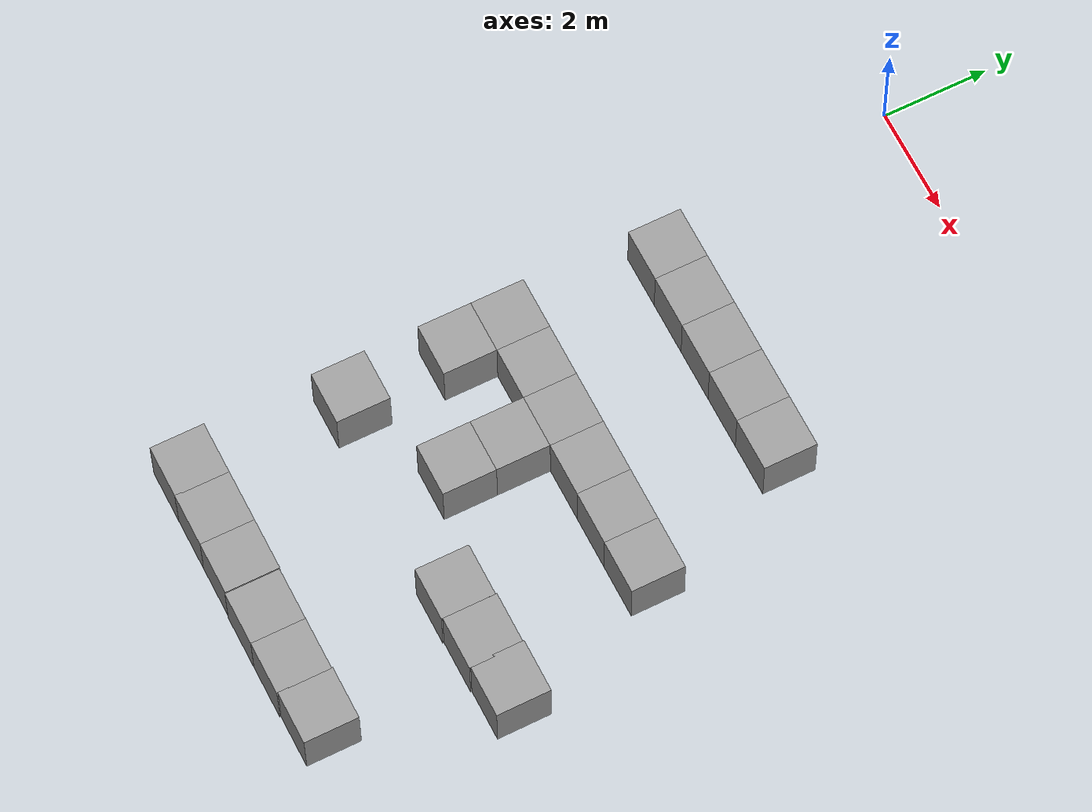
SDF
<sdf version="1.7">
 <model name="maze2.1">
  <link name="link_1_clone_157">
   <inertial>
    <mass>1</mass>
    <inertia>
     <ixx>0.166667</ixx>
     <ixy>0</ixy>
     <ixz>0</ixz>
     <iyy>0.166667</iyy>
     <iyz>0</iyz>
     <izz>0.166667</izz>
    </inertia>
   </inertial>
   <pose>6.73118 -10.6015 0 0 -0 0</pose>
   <visual name="visual">
    <geometry><box><size>1 1 1</size></box></geometry>
    <material>
     <lighting>1</lighting>
     <script><uri>file://media/materials/scripts/gazebo.material</uri><name>Gazebo/Grey</name></script>
     <shader type="pixel"><normal_map>__default__</normal_map></shader>
     <ambient>0.3 0.3 0.3 1</ambient>
     <diffuse>0.7 0.7 0.7 1</diffuse>
     <specular>0.01 0.01 0.01 1</specular>
     <emissive>0 0 0 1</emissive>
    </material>
   </visual>
   <collision name="collision">
    <geometry><box><size>1 1 1</size></box></geometry>
    <surface>
     <friction>
      <ode><mu>1</mu><mu2>1</mu2><fdir1>0 0 0</fdir1><slip1>0</slip1><slip2>0</slip2></ode>
      <torsional>
       <coefficient>1</coefficient>
       <patch_radius>0</patch_radius>
       <surface_radius>0</surface_radius>
       <use_patch_radius>1</use_patch_radius>
       <ode><slip>0</slip></ode>
      </torsional>
     </friction>
     <bounce><restitution_coefficient>0</restitution_coefficient><threshold>1e+06</threshold></bounce>
     <contact>
      <collide_without_contact>0</collide_without_contact>
      <collide_without_contact_bitmask>1</collide_without_contact_bitmask>
      <collide_bitmask>1</collide_bitmask>
      <ode>
       <soft_cfm>0</soft_cfm>
       <soft_erp>0.2</soft_erp>
       <kp>1e+13</kp>
       <kd>1</kd>
       <max_vel>0.01</max_vel>
       <min_depth>0</min_depth>
      </ode>
      <bullet>
       <split_impulse>1</split_impulse>
       <split_impulse_penetration_threshold>-0.01</split_impulse_penetration_threshold>
       <soft_cfm>0</soft_cfm>
       <soft_erp>0.2</soft_erp>
       <kp>1e+13</kp>
       <kd>1</kd>
      </bullet>
     </contact>
    </surface>
   </collision>
  </link>
  <link name="link_1_clone_158">
   <inertial>
    <mass>1</mass>
    <inertia>
     <ixx>0.166667</ixx>
     <ixy>0</ixy>
     <ixz>0</ixz>
     <iyy>0.166667</iyy>
     <iyz>0</iyz>
     <izz>0.166667</izz>
    </inertia>
   </inertial>
   <pose>5.77657 -10.6244 0 0 -0 0</pose>
   <visual name="visual">
    <geometry><box><size>1 1 1</size></box></geometry>
    <material>
     <lighting>1</lighting>
     <script><uri>file://media/materials/scripts/gazebo.material</uri><name>Gazebo/Grey</name></script>
     <shader type="pixel"><normal_map>__default__</normal_map></shader>
     <ambient>0.3 0.3 0.3 1</ambient>
     <diffuse>0.7 0.7 0.7 1</diffuse>
     <specular>0.01 0.01 0.01 1</specular>
     <emissive>0 0 0 1</emissive>
    </material>
   </visual>
   <collision name="collision">
    <geometry><box><size>1 1 1</size></box></geometry>
    <surface>
     <friction>
      <ode><mu>1</mu><mu2>1</mu2><fdir1>0 0 0</fdir1><slip1>0</slip1><slip2>0</slip2></ode>
      <torsional>
       <coefficient>1</coefficient>
       <patch_radius>0</patch_radius>
       <surface_radius>0</surface_radius>
       <use_patch_radius>1</use_patch_radius>
       <ode><slip>0</slip></ode>
      </torsional>
     </friction>
     <bounce><restitution_coefficient>0</restitution_coefficient><threshold>1e+06</threshold></bounce>
     <contact>
      <collide_without_contact>0</collide_without_contact>
      <collide_without_contact_bitmask>1</collide_without_contact_bitmask>
      <collide_bitmask>1</collide_bitmask>
      <ode>
       <soft_cfm>0</soft_cfm>
       <soft_erp>0.2</soft_erp>
       <kp>1e+13</kp>
       <kd>1</kd>
       <max_vel>0.01</max_vel>
       <min_depth>0</min_depth>
      </ode>
      <bullet>
       <split_impulse>1</split_impulse>
       <split_impulse_penetration_threshold>-0.01</split_impulse_penetration_threshold>
       <soft_cfm>0</soft_cfm>
       <soft_erp>0.2</soft_erp>
       <kp>1e+13</kp>
       <kd>1</kd>
      </bullet>
     </contact>
    </surface>
   </collision>
  </link>
  <link name="link_1_clone_159">
   <inertial>
    <mass>1</mass>
    <inertia>
     <ixx>0.166667</ixx>
     <ixy>0</ixy>
     <ixz>0</ixz>
     <iyy>0.166667</iyy>
     <iyz>0</iyz>
     <izz>0.166667</izz>
    </inertia>
   </inertial>
   <pose>3.75382 -7.62535 0 0 -0 0</pose>
   <visual name="visual">
    <geometry><box><size>1 1 1</size></box></geometry>
    <material>
     <lighting>1</lighting>
     <script><uri>file://media/materials/scripts/gazebo.material</uri><name>Gazebo/Grey</name></script>
     <shader type="pixel"><normal_map>__default__</normal_map></shader>
     <ambient>0.3 0.3 0.3 1</ambient>
     <diffuse>0.7 0.7 0.7 1</diffuse>
     <specular>0.01 0.01 0.01 1</specular>
     <emissive>0 0 0 1</emissive>
    </material>
   </visual>
   <collision name="collision">
    <geometry><box><size>1 1 1</size></box></geometry>
    <surface>
     <friction>
      <ode><mu>1</mu><mu2>1</mu2><fdir1>0 0 0</fdir1><slip1>0</slip1><slip2>0</slip2></ode>
      <torsional>
       <coefficient>1</coefficient>
       <patch_radius>0</patch_radius>
       <surface_radius>0</surface_radius>
       <use_patch_radius>1</use_patch_radius>
       <ode><slip>0</slip></ode>
      </torsional>
     </friction>
     <bounce><restitution_coefficient>0</restitution_coefficient><threshold>1e+06</threshold></bounce>
     <contact>
      <collide_without_contact>0</collide_without_contact>
      <collide_without_contact_bitmask>1</collide_without_contact_bitmask>
      <collide_bitmask>1</collide_bitmask>
      <ode>
       <soft_cfm>0</soft_cfm>
       <soft_erp>0.2</soft_erp>
       <kp>1e+13</kp>
       <kd>1</kd>
       <max_vel>0.01</max_vel>
       <min_depth>0</min_depth>
      </ode>
      <bullet>
       <split_impulse>1</split_impulse>
       <split_impulse_penetration_threshold>-0.01</split_impulse_penetration_threshold>
       <soft_cfm>0</soft_cfm>
       <soft_erp>0.2</soft_erp>
       <kp>1e+13</kp>
       <kd>1</kd>
      </bullet>
     </contact>
    </surface>
   </collision>
  </link>
  <link name="link_1_clone_160">
   <inertial>
    <mass>1</mass>
    <inertia>
     <ixx>0.166667</ixx>
     <ixy>0</ixy>
     <ixz>0</ixz>
     <iyy>0.166667</iyy>
     <iyz>0</iyz>
     <izz>0.166667</izz>
    </inertia>
   </inertial>
   <pose>5.75382 -7.62535 0 0 -0 0</pose>
   <visual name="visual">
    <geometry><box><size>1 1 1</size></box></geometry>
    <material>
     <lighting>1</lighting>
     <script><uri>file://media/materials/scripts/gazebo.material</uri><name>Gazebo/Grey</name></script>
     <shader type="pixel"><normal_map>__default__</normal_map></shader>
     <ambient>0.3 0.3 0.3 1</ambient>
     <diffuse>0.7 0.7 0.7 1</diffuse>
     <specular>0.01 0.01 0.01 1</specular>
     <emissive>0 0 0 1</emissive>
    </material>
   </visual>
   <collision name="collision">
    <geometry><box><size>1 1 1</size></box></geometry>
    <surface>
     <friction>
      <ode><mu>1</mu><mu2>1</mu2><fdir1>0 0 0</fdir1><slip1>0</slip1><slip2>0</slip2></ode>
      <torsional>
       <coefficient>1</coefficient>
       <patch_radius>0</patch_radius>
       <surface_radius>0</surface_radius>
       <use_patch_radius>1</use_patch_radius>
       <ode><slip>0</slip></ode>
      </torsional>
     </friction>
     <bounce><restitution_coefficient>0</restitution_coefficient><threshold>1e+06</threshold></bounce>
     <contact>
      <collide_without_contact>0</collide_without_contact>
      <collide_without_contact_bitmask>1</collide_without_contact_bitmask>
      <collide_bitmask>1</collide_bitmask>
      <ode>
       <soft_cfm>0</soft_cfm>
       <soft_erp>0.2</soft_erp>
       <kp>1e+13</kp>
       <kd>1</kd>
       <max_vel>0.01</max_vel>
       <min_depth>0</min_depth>
      </ode>
      <bullet>
       <split_impulse>1</split_impulse>
       <split_impulse_penetration_threshold>-0.01</split_impulse_penetration_threshold>
       <soft_cfm>0</soft_cfm>
       <soft_erp>0.2</soft_erp>
       <kp>1e+13</kp>
       <kd>1</kd>
      </bullet>
     </contact>
    </surface>
   </collision>
  </link>
  <link name="link_1_clone_161">
   <inertial>
    <mass>1</mass>
    <inertia>
     <ixx>0.166667</ixx>
     <ixy>0</ixy>
     <ixz>0</ixz>
     <iyy>0.166667</iyy>
     <iyz>0</iyz>
     <izz>0.166667</izz>
    </inertia>
   </inertial>
   <pose>4.75382 -7.62535 0 0 -0 0</pose>
   <visual name="visual">
    <geometry><box><size>1 1 1</size></box></geometry>
    <material>
     <lighting>1</lighting>
     <script><uri>file://media/materials/scripts/gazebo.material</uri><name>Gazebo/Grey</name></script>
     <shader type="pixel"><normal_map>__default__</normal_map></shader>
     <ambient>0.3 0.3 0.3 1</ambient>
     <diffuse>0.7 0.7 0.7 1</diffuse>
     <specular>0.01 0.01 0.01 1</specular>
     <emissive>0 0 0 1</emissive>
    </material>
   </visual>
   <collision name="collision">
    <geometry><box><size>1 1 1</size></box></geometry>
    <surface>
     <friction>
      <ode><mu>1</mu><mu2>1</mu2><fdir1>0 0 0</fdir1><slip1>0</slip1><slip2>0</slip2></ode>
      <torsional>
       <coefficient>1</coefficient>
       <patch_radius>0</patch_radius>
       <surface_radius>0</surface_radius>
       <use_patch_radius>1</use_patch_radius>
       <ode><slip>0</slip></ode>
      </torsional>
     </friction>
     <bounce><restitution_coefficient>0</restitution_coefficient><threshold>1e+06</threshold></bounce>
     <contact>
      <collide_without_contact>0</collide_without_contact>
      <collide_without_contact_bitmask>1</collide_without_contact_bitmask>
      <collide_bitmask>1</collide_bitmask>
      <ode>
       <soft_cfm>0</soft_cfm>
       <soft_erp>0.2</soft_erp>
       <kp>1e+13</kp>
       <kd>1</kd>
       <max_vel>0.01</max_vel>
       <min_depth>0</min_depth>
      </ode>
      <bullet>
       <split_impulse>1</split_impulse>
       <split_impulse_penetration_threshold>-0.01</split_impulse_penetration_threshold>
       <soft_cfm>0</soft_cfm>
       <soft_erp>0.2</soft_erp>
       <kp>1e+13</kp>
       <kd>1</kd>
      </bullet>
     </contact>
    </surface>
   </collision>
  </link>
  <link name="link_1_clone_164">
   <inertial>
    <mass>1</mass>
    <inertia>
     <ixx>0.166667</ixx>
     <ixy>0</ixy>
     <ixz>0</ixz>
     <iyy>0.166667</iyy>
     <iyz>0</iyz>
     <izz>0.166667</izz>
    </inertia>
   </inertial>
   <pose>4.75382 -4.62534 0 0 -0 0</pose>
   <visual name="visual">
    <geometry><box><size>1 1 1</size></box></geometry>
    <material>
     <lighting>1</lighting>
     <script><uri>file://media/materials/scripts/gazebo.material</uri><name>Gazebo/Grey</name></script>
     <shader type="pixel"><normal_map>__default__</normal_map></shader>
     <ambient>0.3 0.3 0.3 1</ambient>
     <diffuse>0.7 0.7 0.7 1</diffuse>
     <specular>0.01 0.01 0.01 1</specular>
     <emissive>0 0 0 1</emissive>
    </material>
   </visual>
   <collision name="collision">
    <geometry><box><size>1 1 1</size></box></geometry>
    <surface>
     <friction>
      <ode><mu>1</mu><mu2>1</mu2><fdir1>0 0 0</fdir1><slip1>0</slip1><slip2>0</slip2></ode>
      <torsional>
       <coefficient>1</coefficient>
       <patch_radius>0</patch_radius>
       <surface_radius>0</surface_radius>
       <use_patch_radius>1</use_patch_radius>
       <ode><slip>0</slip></ode>
      </torsional>
     </friction>
     <bounce><restitution_coefficient>0</restitution_coefficient><threshold>1e+06</threshold></bounce>
     <contact>
      <collide_without_contact>0</collide_without_contact>
      <collide_without_contact_bitmask>1</collide_without_contact_bitmask>
      <collide_bitmask>1</collide_bitmask>
      <ode>
       <soft_cfm>0</soft_cfm>
       <soft_erp>0.2</soft_erp>
       <kp>1e+13</kp>
       <kd>1</kd>
       <max_vel>0.01</max_vel>
       <min_depth>0</min_depth>
      </ode>
      <bullet>
       <split_impulse>1</split_impulse>
       <split_impulse_penetration_threshold>-0.01</split_impulse_penetration_threshold>
       <soft_cfm>0</soft_cfm>
       <soft_erp>0.2</soft_erp>
       <kp>1e+13</kp>
       <kd>1</kd>
      </bullet>
     </contact>
    </surface>
   </collision>
  </link>
  <link name="link_1_clone_170">
   <inertial>
    <mass>1</mass>
    <inertia>
     <ixx>0.166667</ixx>
     <ixy>0</ixy>
     <ixz>0</ixz>
     <iyy>0.166667</iyy>
     <iyz>0</iyz>
     <izz>0.166667</izz>
    </inertia>
   </inertial>
   <pose>3.75382 -4.62534 0 0 -0 0</pose>
   <visual name="visual">
    <geometry><box><size>1 1 1</size></box></geometry>
    <material>
     <lighting>1</lighting>
     <script><uri>file://media/materials/scripts/gazebo.material</uri><name>Gazebo/Grey</name></script>
     <shader type="pixel"><normal_map>__default__</normal_map></shader>
     <ambient>0.3 0.3 0.3 1</ambient>
     <diffuse>0.7 0.7 0.7 1</diffuse>
     <specular>0.01 0.01 0.01 1</specular>
     <emissive>0 0 0 1</emissive>
    </material>
   </visual>
   <collision name="collision">
    <geometry><box><size>1 1 1</size></box></geometry>
    <surface>
     <friction>
      <ode><mu>1</mu><mu2>1</mu2><fdir1>0 0 0</fdir1><slip1>0</slip1><slip2>0</slip2></ode>
      <torsional>
       <coefficient>1</coefficient>
       <patch_radius>0</patch_radius>
       <surface_radius>0</surface_radius>
       <use_patch_radius>1</use_patch_radius>
       <ode><slip>0</slip></ode>
      </torsional>
     </friction>
     <bounce><restitution_coefficient>0</restitution_coefficient><threshold>1e+06</threshold></bounce>
     <contact>
      <collide_without_contact>0</collide_without_contact>
      <collide_without_contact_bitmask>1</collide_without_contact_bitmask>
      <collide_bitmask>1</collide_bitmask>
      <ode>
       <soft_cfm>0</soft_cfm>
       <soft_erp>0.2</soft_erp>
       <kp>1e+13</kp>
       <kd>1</kd>
       <max_vel>0.01</max_vel>
       <min_depth>0</min_depth>
      </ode>
      <bullet>
       <split_impulse>1</split_impulse>
       <split_impulse_penetration_threshold>-0.01</split_impulse_penetration_threshold>
       <soft_cfm>0</soft_cfm>
       <soft_erp>0.2</soft_erp>
       <kp>1e+13</kp>
       <kd>1</kd>
      </bullet>
     </contact>
    </surface>
   </collision>
  </link>
  <link name="link_1_clone_171">
   <inertial>
    <mass>1</mass>
    <inertia>
     <ixx>0.166667</ixx>
     <ixy>0</ixy>
     <ixz>0</ixz>
     <iyy>0.166667</iyy>
     <iyz>0</iyz>
     <izz>0.166667</izz>
    </inertia>
   </inertial>
   <pose>2.75382 -4.62534 0 0 -0 0</pose>
   <visual name="visual">
    <geometry><box><size>1 1 1</size></box></geometry>
    <material>
     <lighting>1</lighting>
     <script><uri>file://media/materials/scripts/gazebo.material</uri><name>Gazebo/Grey</name></script>
     <shader type="pixel"><normal_map>__default__</normal_map></shader>
     <ambient>0.3 0.3 0.3 1</ambient>
     <diffuse>0.7 0.7 0.7 1</diffuse>
     <specular>0.01 0.01 0.01 1</specular>
     <emissive>0 0 0 1</emissive>
    </material>
   </visual>
   <collision name="collision">
    <geometry><box><size>1 1 1</size></box></geometry>
    <surface>
     <friction>
      <ode><mu>1</mu><mu2>1</mu2><fdir1>0 0 0</fdir1><slip1>0</slip1><slip2>0</slip2></ode>
      <torsional>
       <coefficient>1</coefficient>
       <patch_radius>0</patch_radius>
       <surface_radius>0</surface_radius>
       <use_patch_radius>1</use_patch_radius>
       <ode><slip>0</slip></ode>
      </torsional>
     </friction>
     <bounce><restitution_coefficient>0</restitution_coefficient><threshold>1e+06</threshold></bounce>
     <contact>
      <collide_without_contact>0</collide_without_contact>
      <collide_without_contact_bitmask>1</collide_without_contact_bitmask>
      <collide_bitmask>1</collide_bitmask>
      <ode>
       <soft_cfm>0</soft_cfm>
       <soft_erp>0.2</soft_erp>
       <kp>1e+13</kp>
       <kd>1</kd>
       <max_vel>0.01</max_vel>
       <min_depth>0</min_depth>
      </ode>
      <bullet>
       <split_impulse>1</split_impulse>
       <split_impulse_penetration_threshold>-0.01</split_impulse_penetration_threshold>
       <soft_cfm>0</soft_cfm>
       <soft_erp>0.2</soft_erp>
       <kp>1e+13</kp>
       <kd>1</kd>
      </bullet>
     </contact>
    </surface>
   </collision>
  </link>
  <link name="link_1_clone_183">
   <inertial>
    <mass>1</mass>
    <inertia>
     <ixx>0.166667</ixx>
     <ixy>0</ixy>
     <ixz>0</ixz>
     <iyy>0.166667</iyy>
     <iyz>0</iyz>
     <izz>0.166667</izz>
    </inertia>
   </inertial>
   <pose>4.77636 -10.6471 0 0 -0 0</pose>
   <visual name="visual">
    <geometry><box><size>1 1 1</size></box></geometry>
    <material>
     <lighting>1</lighting>
     <script><uri>file://media/materials/scripts/gazebo.material</uri><name>Gazebo/Grey</name></script>
     <shader type="pixel"><normal_map>__default__</normal_map></shader>
     <ambient>0.3 0.3 0.3 1</ambient>
     <diffuse>0.7 0.7 0.7 1</diffuse>
     <specular>0.01 0.01 0.01 1</specular>
     <emissive>0 0 0 1</emissive>
    </material>
   </visual>
   <collision name="collision">
    <geometry><box><size>1 1 1</size></box></geometry>
    <surface>
     <friction>
      <ode><mu>1</mu><mu2>1</mu2><fdir1>0 0 0</fdir1><slip1>0</slip1><slip2>0</slip2></ode>
      <torsional>
       <coefficient>1</coefficient>
       <patch_radius>0</patch_radius>
       <surface_radius>0</surface_radius>
       <use_patch_radius>1</use_patch_radius>
       <ode><slip>0</slip></ode>
      </torsional>
     </friction>
     <bounce><restitution_coefficient>0</restitution_coefficient><threshold>1e+06</threshold></bounce>
     <contact>
      <collide_without_contact>0</collide_without_contact>
      <collide_without_contact_bitmask>1</collide_without_contact_bitmask>
      <collide_bitmask>1</collide_bitmask>
      <ode>
       <soft_cfm>0</soft_cfm>
       <soft_erp>0.2</soft_erp>
       <kp>1e+13</kp>
       <kd>1</kd>
       <max_vel>0.01</max_vel>
       <min_depth>0</min_depth>
      </ode>
      <bullet>
       <split_impulse>1</split_impulse>
       <split_impulse_penetration_threshold>-0.01</split_impulse_penetration_threshold>
       <soft_cfm>0</soft_cfm>
       <soft_erp>0.2</soft_erp>
       <kp>1e+13</kp>
       <kd>1</kd>
      </bullet>
     </contact>
    </surface>
   </collision>
  </link>
  <link name="link_1_clone_184">
   <inertial>
    <mass>1</mass>
    <inertia>
     <ixx>0.166667</ixx>
     <ixy>0</ixy>
     <ixz>0</ixz>
     <iyy>0.166667</iyy>
     <iyz>0</iyz>
     <izz>0.166667</izz>
    </inertia>
   </inertial>
   <pose>2.75382 -9.62535 0 0 -0 0</pose>
   <visual name="visual">
    <geometry><box><size>1 1 1</size></box></geometry>
    <material>
     <lighting>1</lighting>
     <script><uri>file://media/materials/scripts/gazebo.material</uri><name>Gazebo/Grey</name></script>
     <shader type="pixel"><normal_map>__default__</normal_map></shader>
     <ambient>0.3 0.3 0.3 1</ambient>
     <diffuse>0.7 0.7 0.7 1</diffuse>
     <specular>0.01 0.01 0.01 1</specular>
     <emissive>0 0 0 1</emissive>
    </material>
   </visual>
   <collision name="collision">
    <geometry><box><size>1 1 1</size></box></geometry>
    <surface>
     <friction>
      <ode><mu>1</mu><mu2>1</mu2><fdir1>0 0 0</fdir1><slip1>0</slip1><slip2>0</slip2></ode>
      <torsional>
       <coefficient>1</coefficient>
       <patch_radius>0</patch_radius>
       <surface_radius>0</surface_radius>
       <use_patch_radius>1</use_patch_radius>
       <ode><slip>0</slip></ode>
      </torsional>
     </friction>
     <bounce><restitution_coefficient>0</restitution_coefficient><threshold>1e+06</threshold></bounce>
     <contact>
      <collide_without_contact>0</collide_without_contact>
      <collide_without_contact_bitmask>1</collide_without_contact_bitmask>
      <collide_bitmask>1</collide_bitmask>
      <ode>
       <soft_cfm>0</soft_cfm>
       <soft_erp>0.2</soft_erp>
       <kp>1e+13</kp>
       <kd>1</kd>
       <max_vel>0.01</max_vel>
       <min_depth>0</min_depth>
      </ode>
      <bullet>
       <split_impulse>1</split_impulse>
       <split_impulse_penetration_threshold>-0.01</split_impulse_penetration_threshold>
       <soft_cfm>0</soft_cfm>
       <soft_erp>0.2</soft_erp>
       <kp>1e+13</kp>
       <kd>1</kd>
      </bullet>
     </contact>
    </surface>
   </collision>
  </link>
  <link name="link_1_clone_185">
   <inertial>
    <mass>1</mass>
    <inertia>
     <ixx>0.166667</ixx>
     <ixy>0</ixy>
     <ixz>0</ixz>
     <iyy>0.166667</iyy>
     <iyz>0</iyz>
     <izz>0.166667</izz>
    </inertia>
   </inertial>
   <pose>0.75382 -10.6254 0 0 -0 0</pose>
   <visual name="visual">
    <geometry><box><size>1 1 1</size></box></geometry>
    <material>
     <lighting>1</lighting>
     <script><uri>file://media/materials/scripts/gazebo.material</uri><name>Gazebo/Grey</name></script>
     <shader type="pixel"><normal_map>__default__</normal_map></shader>
     <ambient>0.3 0.3 0.3 1</ambient>
     <diffuse>0.7 0.7 0.7 1</diffuse>
     <specular>0.01 0.01 0.01 1</specular>
     <emissive>0 0 0 1</emissive>
    </material>
   </visual>
   <collision name="collision">
    <geometry><box><size>1 1 1</size></box></geometry>
    <surface>
     <friction>
      <ode><mu>1</mu><mu2>1</mu2><fdir1>0 0 0</fdir1><slip1>0</slip1><slip2>0</slip2></ode>
      <torsional>
       <coefficient>1</coefficient>
       <patch_radius>0</patch_radius>
       <surface_radius>0</surface_radius>
       <use_patch_radius>1</use_patch_radius>
       <ode><slip>0</slip></ode>
      </torsional>
     </friction>
     <bounce><restitution_coefficient>0</restitution_coefficient><threshold>1e+06</threshold></bounce>
     <contact>
      <collide_without_contact>0</collide_without_contact>
      <collide_without_contact_bitmask>1</collide_without_contact_bitmask>
      <collide_bitmask>1</collide_bitmask>
      <ode>
       <soft_cfm>0</soft_cfm>
       <soft_erp>0.2</soft_erp>
       <kp>1e+13</kp>
       <kd>1</kd>
       <max_vel>0.01</max_vel>
       <min_depth>0</min_depth>
      </ode>
      <bullet>
       <split_impulse>1</split_impulse>
       <split_impulse_penetration_threshold>-0.01</split_impulse_penetration_threshold>
       <soft_cfm>0</soft_cfm>
       <soft_erp>0.2</soft_erp>
       <kp>1e+13</kp>
       <kd>1</kd>
      </bullet>
     </contact>
    </surface>
   </collision>
  </link>
  <link name="link_1_clone_186">
   <inertial>
    <mass>1</mass>
    <inertia>
     <ixx>0.166667</ixx>
     <ixy>0</ixy>
     <ixz>0</ixz>
     <iyy>0.166667</iyy>
     <iyz>0</iyz>
     <izz>0.166667</izz>
    </inertia>
   </inertial>
   <pose>2.75382 -8.62535 0 0 -0 0</pose>
   <visual name="visual">
    <geometry><box><size>1 1 1</size></box></geometry>
    <material>
     <lighting>1</lighting>
     <script><uri>file://media/materials/scripts/gazebo.material</uri><name>Gazebo/Grey</name></script>
     <shader type="pixel"><normal_map>__default__</normal_map></shader>
     <ambient>0.3 0.3 0.3 1</ambient>
     <diffuse>0.7 0.7 0.7 1</diffuse>
     <specular>0.01 0.01 0.01 1</specular>
     <emissive>0 0 0 1</emissive>
    </material>
   </visual>
   <collision name="collision">
    <geometry><box><size>1 1 1</size></box></geometry>
    <surface>
     <friction>
      <ode><mu>1</mu><mu2>1</mu2><fdir1>0 0 0</fdir1><slip1>0</slip1><slip2>0</slip2></ode>
      <torsional>
       <coefficient>1</coefficient>
       <patch_radius>0</patch_radius>
       <surface_radius>0</surface_radius>
       <use_patch_radius>1</use_patch_radius>
       <ode><slip>0</slip></ode>
      </torsional>
     </friction>
     <bounce><restitution_coefficient>0</restitution_coefficient><threshold>1e+06</threshold></bounce>
     <contact>
      <collide_without_contact>0</collide_without_contact>
      <collide_without_contact_bitmask>1</collide_without_contact_bitmask>
      <collide_bitmask>1</collide_bitmask>
      <ode>
       <soft_cfm>0</soft_cfm>
       <soft_erp>0.2</soft_erp>
       <kp>1e+13</kp>
       <kd>1</kd>
       <max_vel>0.01</max_vel>
       <min_depth>0</min_depth>
      </ode>
      <bullet>
       <split_impulse>1</split_impulse>
       <split_impulse_penetration_threshold>-0.01</split_impulse_penetration_threshold>
       <soft_cfm>0</soft_cfm>
       <soft_erp>0.2</soft_erp>
       <kp>1e+13</kp>
       <kd>1</kd>
      </bullet>
     </contact>
    </surface>
   </collision>
  </link>
  <link name="link_1_clone_187">
   <inertial>
    <mass>1</mass>
    <inertia>
     <ixx>0.166667</ixx>
     <ixy>0</ixy>
     <ixz>0</ixz>
     <iyy>0.166667</iyy>
     <iyz>0</iyz>
     <izz>0.166667</izz>
    </inertia>
   </inertial>
   <pose>2.75382 -7.62535 0 0 -0 0</pose>
   <visual name="visual">
    <geometry><box><size>1 1 1</size></box></geometry>
    <material>
     <lighting>1</lighting>
     <script><uri>file://media/materials/scripts/gazebo.material</uri><name>Gazebo/Grey</name></script>
     <shader type="pixel"><normal_map>__default__</normal_map></shader>
     <ambient>0.3 0.3 0.3 1</ambient>
     <diffuse>0.7 0.7 0.7 1</diffuse>
     <specular>0.01 0.01 0.01 1</specular>
     <emissive>0 0 0 1</emissive>
    </material>
   </visual>
   <collision name="collision">
    <geometry><box><size>1 1 1</size></box></geometry>
    <surface>
     <friction>
      <ode><mu>1</mu><mu2>1</mu2><fdir1>0 0 0</fdir1><slip1>0</slip1><slip2>0</slip2></ode>
      <torsional>
       <coefficient>1</coefficient>
       <patch_radius>0</patch_radius>
       <surface_radius>0</surface_radius>
       <use_patch_radius>1</use_patch_radius>
       <ode><slip>0</slip></ode>
      </torsional>
     </friction>
     <bounce><restitution_coefficient>0</restitution_coefficient><threshold>1e+06</threshold></bounce>
     <contact>
      <collide_without_contact>0</collide_without_contact>
      <collide_without_contact_bitmask>1</collide_without_contact_bitmask>
      <collide_bitmask>1</collide_bitmask>
      <ode>
       <soft_cfm>0</soft_cfm>
       <soft_erp>0.2</soft_erp>
       <kp>1e+13</kp>
       <kd>1</kd>
       <max_vel>0.01</max_vel>
       <min_depth>0</min_depth>
      </ode>
      <bullet>
       <split_impulse>1</split_impulse>
       <split_impulse_penetration_threshold>-0.01</split_impulse_penetration_threshold>
       <soft_cfm>0</soft_cfm>
       <soft_erp>0.2</soft_erp>
       <kp>1e+13</kp>
       <kd>1</kd>
      </bullet>
     </contact>
    </surface>
   </collision>
  </link>
  <link name="link_1_clone_188">
   <inertial>
    <mass>1</mass>
    <inertia>
     <ixx>0.166667</ixx>
     <ixy>0</ixy>
     <ixz>0</ixz>
     <iyy>0.166667</iyy>
     <iyz>0</iyz>
     <izz>0.166667</izz>
    </inertia>
   </inertial>
   <pose>1.75382 -7.62535 0 0 -0 0</pose>
   <visual name="visual">
    <geometry><box><size>1 1 1</size></box></geometry>
    <material>
     <lighting>1</lighting>
     <script><uri>file://media/materials/scripts/gazebo.material</uri><name>Gazebo/Grey</name></script>
     <shader type="pixel"><normal_map>__default__</normal_map></shader>
     <ambient>0.3 0.3 0.3 1</ambient>
     <diffuse>0.7 0.7 0.7 1</diffuse>
     <specular>0.01 0.01 0.01 1</specular>
     <emissive>0 0 0 1</emissive>
    </material>
   </visual>
   <collision name="collision">
    <geometry><box><size>1 1 1</size></box></geometry>
    <surface>
     <friction>
      <ode><mu>1</mu><mu2>1</mu2><fdir1>0 0 0</fdir1><slip1>0</slip1><slip2>0</slip2></ode>
      <torsional>
       <coefficient>1</coefficient>
       <patch_radius>0</patch_radius>
       <surface_radius>0</surface_radius>
       <use_patch_radius>1</use_patch_radius>
       <ode><slip>0</slip></ode>
      </torsional>
     </friction>
     <bounce><restitution_coefficient>0</restitution_coefficient><threshold>1e+06</threshold></bounce>
     <contact>
      <collide_without_contact>0</collide_without_contact>
      <collide_without_contact_bitmask>1</collide_without_contact_bitmask>
      <collide_bitmask>1</collide_bitmask>
      <ode>
       <soft_cfm>0</soft_cfm>
       <soft_erp>0.2</soft_erp>
       <kp>1e+13</kp>
       <kd>1</kd>
       <max_vel>0.01</max_vel>
       <min_depth>0</min_depth>
      </ode>
      <bullet>
       <split_impulse>1</split_impulse>
       <split_impulse_penetration_threshold>-0.01</split_impulse_penetration_threshold>
       <soft_cfm>0</soft_cfm>
       <soft_erp>0.2</soft_erp>
       <kp>1e+13</kp>
       <kd>1</kd>
      </bullet>
     </contact>
    </surface>
   </collision>
  </link>
  <link name="link_1_clone_189">
   <inertial>
    <mass>1</mass>
    <inertia>
     <ixx>0.166667</ixx>
     <ixy>0</ixy>
     <ixz>0</ixz>
     <iyy>0.166667</iyy>
     <iyz>0</iyz>
     <izz>0.166667</izz>
    </inertia>
   </inertial>
   <pose>0.75382 -7.62535 0 0 -0 0</pose>
   <visual name="visual">
    <geometry><box><size>1 1 1</size></box></geometry>
    <material>
     <lighting>1</lighting>
     <script><uri>file://media/materials/scripts/gazebo.material</uri><name>Gazebo/Grey</name></script>
     <shader type="pixel"><normal_map>__default__</normal_map></shader>
     <ambient>0.3 0.3 0.3 1</ambient>
     <diffuse>0.7 0.7 0.7 1</diffuse>
     <specular>0.01 0.01 0.01 1</specular>
     <emissive>0 0 0 1</emissive>
    </material>
   </visual>
   <collision name="collision">
    <geometry><box><size>1 1 1</size></box></geometry>
    <surface>
     <friction>
      <ode><mu>1</mu><mu2>1</mu2><fdir1>0 0 0</fdir1><slip1>0</slip1><slip2>0</slip2></ode>
      <torsional>
       <coefficient>1</coefficient>
       <patch_radius>0</patch_radius>
       <surface_radius>0</surface_radius>
       <use_patch_radius>1</use_patch_radius>
       <ode><slip>0</slip></ode>
      </torsional>
     </friction>
     <bounce><restitution_coefficient>0</restitution_coefficient><threshold>1e+06</threshold></bounce>
     <contact>
      <collide_without_contact>0</collide_without_contact>
      <collide_without_contact_bitmask>1</collide_without_contact_bitmask>
      <collide_bitmask>1</collide_bitmask>
      <ode>
       <soft_cfm>0</soft_cfm>
       <soft_erp>0.2</soft_erp>
       <kp>1e+13</kp>
       <kd>1</kd>
       <max_vel>0.01</max_vel>
       <min_depth>0</min_depth>
      </ode>
      <bullet>
       <split_impulse>1</split_impulse>
       <split_impulse_penetration_threshold>-0.01</split_impulse_penetration_threshold>
       <soft_cfm>0</soft_cfm>
       <soft_erp>0.2</soft_erp>
       <kp>1e+13</kp>
       <kd>1</kd>
      </bullet>
     </contact>
    </surface>
   </collision>
  </link>
  <link name="link_1_clone_191">
   <inertial>
    <mass>1</mass>
    <inertia>
     <ixx>0.166667</ixx>
     <ixy>0</ixy>
     <ixz>0</ixz>
     <iyy>0.166667</iyy>
     <iyz>0</iyz>
     <izz>0.166667</izz>
    </inertia>
   </inertial>
   <pose>1.75382 -4.62534 0 0 -0 0</pose>
   <visual name="visual">
    <geometry><box><size>1 1 1</size></box></geometry>
    <material>
     <lighting>1</lighting>
     <script><uri>file://media/materials/scripts/gazebo.material</uri><name>Gazebo/Grey</name></script>
     <shader type="pixel"><normal_map>__default__</normal_map></shader>
     <ambient>0.3 0.3 0.3 1</ambient>
     <diffuse>0.7 0.7 0.7 1</diffuse>
     <specular>0.01 0.01 0.01 1</specular>
     <emissive>0 0 0 1</emissive>
    </material>
   </visual>
   <collision name="collision">
    <geometry><box><size>1 1 1</size></box></geometry>
    <surface>
     <friction>
      <ode><mu>1</mu><mu2>1</mu2><fdir1>0 0 0</fdir1><slip1>0</slip1><slip2>0</slip2></ode>
      <torsional>
       <coefficient>1</coefficient>
       <patch_radius>0</patch_radius>
       <surface_radius>0</surface_radius>
       <use_patch_radius>1</use_patch_radius>
       <ode><slip>0</slip></ode>
      </torsional>
     </friction>
     <bounce><restitution_coefficient>0</restitution_coefficient><threshold>1e+06</threshold></bounce>
     <contact>
      <collide_without_contact>0</collide_without_contact>
      <collide_without_contact_bitmask>1</collide_without_contact_bitmask>
      <collide_bitmask>1</collide_bitmask>
      <ode>
       <soft_cfm>0</soft_cfm>
       <soft_erp>0.2</soft_erp>
       <kp>1e+13</kp>
       <kd>1</kd>
       <max_vel>0.01</max_vel>
       <min_depth>0</min_depth>
      </ode>
      <bullet>
       <split_impulse>1</split_impulse>
       <split_impulse_penetration_threshold>-0.01</split_impulse_penetration_threshold>
       <soft_cfm>0</soft_cfm>
       <soft_erp>0.2</soft_erp>
       <kp>1e+13</kp>
       <kd>1</kd>
      </bullet>
     </contact>
    </surface>
   </collision>
  </link>
  <link name="link_1_clone_192">
   <inertial>
    <mass>1</mass>
    <inertia>
     <ixx>0.166667</ixx>
     <ixy>0</ixy>
     <ixz>0</ixz>
     <iyy>0.166667</iyy>
     <iyz>0</iyz>
     <izz>0.166667</izz>
    </inertia>
   </inertial>
   <pose>0.753816 -4.62534 0 0 -0 0</pose>
   <visual name="visual">
    <geometry><box><size>1 1 1</size></box></geometry>
    <material>
     <lighting>1</lighting>
     <script><uri>file://media/materials/scripts/gazebo.material</uri><name>Gazebo/Grey</name></script>
     <shader type="pixel"><normal_map>__default__</normal_map></shader>
     <ambient>0.3 0.3 0.3 1</ambient>
     <diffuse>0.7 0.7 0.7 1</diffuse>
     <specular>0.01 0.01 0.01 1</specular>
     <emissive>0 0 0 1</emissive>
    </material>
   </visual>
   <collision name="collision">
    <geometry><box><size>1 1 1</size></box></geometry>
    <surface>
     <friction>
      <ode><mu>1</mu><mu2>1</mu2><fdir1>0 0 0</fdir1><slip1>0</slip1><slip2>0</slip2></ode>
      <torsional>
       <coefficient>1</coefficient>
       <patch_radius>0</patch_radius>
       <surface_radius>0</surface_radius>
       <use_patch_radius>1</use_patch_radius>
       <ode><slip>0</slip></ode>
      </torsional>
     </friction>
     <bounce><restitution_coefficient>0</restitution_coefficient><threshold>1e+06</threshold></bounce>
     <contact>
      <collide_without_contact>0</collide_without_contact>
      <collide_without_contact_bitmask>1</collide_without_contact_bitmask>
      <collide_bitmask>1</collide_bitmask>
      <ode>
       <soft_cfm>0</soft_cfm>
       <soft_erp>0.2</soft_erp>
       <kp>1e+13</kp>
       <kd>1</kd>
       <max_vel>0.01</max_vel>
       <min_depth>0</min_depth>
      </ode>
      <bullet>
       <split_impulse>1</split_impulse>
       <split_impulse_penetration_threshold>-0.01</split_impulse_penetration_threshold>
       <soft_cfm>0</soft_cfm>
       <soft_erp>0.2</soft_erp>
       <kp>1e+13</kp>
       <kd>1</kd>
      </bullet>
     </contact>
    </surface>
   </collision>
  </link>
  <link name="link_1_clone_201">
   <inertial>
    <mass>1</mass>
    <inertia>
     <ixx>0.166667</ixx>
     <ixy>0</ixy>
     <ixz>0</ixz>
     <iyy>0.166667</iyy>
     <iyz>0</iyz>
     <izz>0.166667</izz>
    </inertia>
   </inertial>
   <pose>0.753816 -8.62535 0 0 -0 0</pose>
   <visual name="visual">
    <geometry><box><size>1 1 1</size></box></geometry>
    <material>
     <lighting>1</lighting>
     <script><uri>file://media/materials/scripts/gazebo.material</uri><name>Gazebo/Grey</name></script>
     <shader type="pixel"><normal_map>__default__</normal_map></shader>
     <ambient>0.3 0.3 0.3 1</ambient>
     <diffuse>0.7 0.7 0.7 1</diffuse>
     <specular>0.01 0.01 0.01 1</specular>
     <emissive>0 0 0 1</emissive>
    </material>
   </visual>
   <collision name="collision">
    <geometry><box><size>1 1 1</size></box></geometry>
    <surface>
     <friction>
      <ode><mu>1</mu><mu2>1</mu2><fdir1>0 0 0</fdir1><slip1>0</slip1><slip2>0</slip2></ode>
      <torsional>
       <coefficient>1</coefficient>
       <patch_radius>0</patch_radius>
       <surface_radius>0</surface_radius>
       <use_patch_radius>1</use_patch_radius>
       <ode><slip>0</slip></ode>
      </torsional>
     </friction>
     <bounce><restitution_coefficient>0</restitution_coefficient><threshold>1e+06</threshold></bounce>
     <contact>
      <collide_without_contact>0</collide_without_contact>
      <collide_without_contact_bitmask>1</collide_without_contact_bitmask>
      <collide_bitmask>1</collide_bitmask>
      <ode>
       <soft_cfm>0</soft_cfm>
       <soft_erp>0.2</soft_erp>
       <kp>1e+13</kp>
       <kd>1</kd>
       <max_vel>0.01</max_vel>
       <min_depth>0</min_depth>
      </ode>
      <bullet>
       <split_impulse>1</split_impulse>
       <split_impulse_penetration_threshold>-0.01</split_impulse_penetration_threshold>
       <soft_cfm>0</soft_cfm>
       <soft_erp>0.2</soft_erp>
       <kp>1e+13</kp>
       <kd>1</kd>
      </bullet>
     </contact>
    </surface>
   </collision>
  </link>
  <link name="link_1_clone_45">
   <inertial>
    <mass>1</mass>
    <inertia>
     <ixx>0.166667</ixx>
     <ixy>0</ixy>
     <ixz>0</ixz>
     <iyy>0.166667</iyy>
     <iyz>0</iyz>
     <izz>0.166667</izz>
    </inertia>
   </inertial>
   <pose>0.769161 -13.6206 0 0 -0 0</pose>
   <visual name="visual">
    <geometry><box><size>1 1 1</size></box></geometry>
    <material>
     <lighting>1</lighting>
     <script><uri>file://media/materials/scripts/gazebo.material</uri><name>Gazebo/Grey</name></script>
     <shader type="pixel"><normal_map>__default__</normal_map></shader>
     <ambient>0.3 0.3 0.3 1</ambient>
     <diffuse>0.7 0.7 0.7 1</diffuse>
     <specular>0.01 0.01 0.01 1</specular>
     <emissive>0 0 0 1</emissive>
    </material>
   </visual>
   <collision name="collision">
    <geometry><box><size>1 1 1</size></box></geometry>
    <surface>
     <friction>
      <ode><mu>1</mu><mu2>1</mu2><fdir1>0 0 0</fdir1><slip1>0</slip1><slip2>0</slip2></ode>
      <torsional>
       <coefficient>1</coefficient>
       <patch_radius>0</patch_radius>
       <surface_radius>0</surface_radius>
       <use_patch_radius>1</use_patch_radius>
       <ode><slip>0</slip></ode>
      </torsional>
     </friction>
     <bounce><restitution_coefficient>0</restitution_coefficient><threshold>1e+06</threshold></bounce>
     <contact>
      <collide_without_contact>0</collide_without_contact>
      <collide_without_contact_bitmask>1</collide_without_contact_bitmask>
      <collide_bitmask>1</collide_bitmask>
      <ode>
       <soft_cfm>0</soft_cfm>
       <soft_erp>0.2</soft_erp>
       <kp>1e+13</kp>
       <kd>1</kd>
       <max_vel>0.01</max_vel>
       <min_depth>0</min_depth>
      </ode>
      <bullet>
       <split_impulse>1</split_impulse>
       <split_impulse_penetration_threshold>-0.01</split_impulse_penetration_threshold>
       <soft_cfm>0</soft_cfm>
       <soft_erp>0.2</soft_erp>
       <kp>1e+13</kp>
       <kd>1</kd>
      </bullet>
     </contact>
    </surface>
   </collision>
  </link>
  <link name="link_1_clone_46">
   <inertial>
    <mass>1</mass>
    <inertia>
     <ixx>0.166667</ixx>
     <ixy>0</ixy>
     <ixz>0</ixz>
     <iyy>0.166667</iyy>
     <iyz>0</iyz>
     <izz>0.166667</izz>
    </inertia>
   </inertial>
   <pose>1.75382 -13.6206 0 0 -0 0</pose>
   <visual name="visual">
    <geometry><box><size>1 1 1</size></box></geometry>
    <material>
     <lighting>1</lighting>
     <script><uri>file://media/materials/scripts/gazebo.material</uri><name>Gazebo/Grey</name></script>
     <shader type="pixel"><normal_map>__default__</normal_map></shader>
     <ambient>0.3 0.3 0.3 1</ambient>
     <diffuse>0.7 0.7 0.7 1</diffuse>
     <specular>0.01 0.01 0.01 1</specular>
     <emissive>0 0 0 1</emissive>
    </material>
   </visual>
   <collision name="collision">
    <geometry><box><size>1 1 1</size></box></geometry>
    <surface>
     <friction>
      <ode><mu>1</mu><mu2>1</mu2><fdir1>0 0 0</fdir1><slip1>0</slip1><slip2>0</slip2></ode>
      <torsional>
       <coefficient>1</coefficient>
       <patch_radius>0</patch_radius>
       <surface_radius>0</surface_radius>
       <use_patch_radius>1</use_patch_radius>
       <ode><slip>0</slip></ode>
      </torsional>
     </friction>
     <bounce><restitution_coefficient>0</restitution_coefficient><threshold>1e+06</threshold></bounce>
     <contact>
      <collide_without_contact>0</collide_without_contact>
      <collide_without_contact_bitmask>1</collide_without_contact_bitmask>
      <collide_bitmask>1</collide_bitmask>
      <ode>
       <soft_cfm>0</soft_cfm>
       <soft_erp>0.2</soft_erp>
       <kp>1e+13</kp>
       <kd>1</kd>
       <max_vel>0.01</max_vel>
       <min_depth>0</min_depth>
      </ode>
      <bullet>
       <split_impulse>1</split_impulse>
       <split_impulse_penetration_threshold>-0.01</split_impulse_penetration_threshold>
       <soft_cfm>0</soft_cfm>
       <soft_erp>0.2</soft_erp>
       <kp>1e+13</kp>
       <kd>1</kd>
      </bullet>
     </contact>
    </surface>
   </collision>
  </link>
  <link name="link_1_clone_47">
   <inertial>
    <mass>1</mass>
    <inertia>
     <ixx>0.166667</ixx>
     <ixy>0</ixy>
     <ixz>0</ixz>
     <iyy>0.166667</iyy>
     <iyz>0</iyz>
     <izz>0.166667</izz>
    </inertia>
   </inertial>
   <pose>2.73848 -13.6206 0 0 -0 0</pose>
   <visual name="visual">
    <geometry><box><size>1 1 1</size></box></geometry>
    <material>
     <lighting>1</lighting>
     <script><uri>file://media/materials/scripts/gazebo.material</uri><name>Gazebo/Grey</name></script>
     <shader type="pixel"><normal_map>__default__</normal_map></shader>
     <ambient>0.3 0.3 0.3 1</ambient>
     <diffuse>0.7 0.7 0.7 1</diffuse>
     <specular>0.01 0.01 0.01 1</specular>
     <emissive>0 0 0 1</emissive>
    </material>
   </visual>
   <collision name="collision">
    <geometry><box><size>1 1 1</size></box></geometry>
    <surface>
     <friction>
      <ode><mu>1</mu><mu2>1</mu2><fdir1>0 0 0</fdir1><slip1>0</slip1><slip2>0</slip2></ode>
      <torsional>
       <coefficient>1</coefficient>
       <patch_radius>0</patch_radius>
       <surface_radius>0</surface_radius>
       <use_patch_radius>1</use_patch_radius>
       <ode><slip>0</slip></ode>
      </torsional>
     </friction>
     <bounce><restitution_coefficient>0</restitution_coefficient><threshold>1e+06</threshold></bounce>
     <contact>
      <collide_without_contact>0</collide_without_contact>
      <collide_without_contact_bitmask>1</collide_without_contact_bitmask>
      <collide_bitmask>1</collide_bitmask>
      <ode>
       <soft_cfm>0</soft_cfm>
       <soft_erp>0.2</soft_erp>
       <kp>1e+13</kp>
       <kd>1</kd>
       <max_vel>0.01</max_vel>
       <min_depth>0</min_depth>
      </ode>
      <bullet>
       <split_impulse>1</split_impulse>
       <split_impulse_penetration_threshold>-0.01</split_impulse_penetration_threshold>
       <soft_cfm>0</soft_cfm>
       <soft_erp>0.2</soft_erp>
       <kp>1e+13</kp>
       <kd>1</kd>
      </bullet>
     </contact>
    </surface>
   </collision>
  </link>
  <link name="link_1_clone_48">
   <inertial>
    <mass>1</mass>
    <inertia>
     <ixx>0.166667</ixx>
     <ixy>0</ixy>
     <ixz>0</ixz>
     <iyy>0.166667</iyy>
     <iyz>0</iyz>
     <izz>0.166667</izz>
    </inertia>
   </inertial>
   <pose>3.75382 -13.6359 0 0 -0 0</pose>
   <visual name="visual">
    <geometry><box><size>1 1 1</size></box></geometry>
    <material>
     <lighting>1</lighting>
     <script><uri>file://media/materials/scripts/gazebo.material</uri><name>Gazebo/Grey</name></script>
     <shader type="pixel"><normal_map>__default__</normal_map></shader>
     <ambient>0.3 0.3 0.3 1</ambient>
     <diffuse>0.7 0.7 0.7 1</diffuse>
     <specular>0.01 0.01 0.01 1</specular>
     <emissive>0 0 0 1</emissive>
    </material>
   </visual>
   <collision name="collision">
    <geometry><box><size>1 1 1</size></box></geometry>
    <surface>
     <friction>
      <ode><mu>1</mu><mu2>1</mu2><fdir1>0 0 0</fdir1><slip1>0</slip1><slip2>0</slip2></ode>
      <torsional>
       <coefficient>1</coefficient>
       <patch_radius>0</patch_radius>
       <surface_radius>0</surface_radius>
       <use_patch_radius>1</use_patch_radius>
       <ode><slip>0</slip></ode>
      </torsional>
     </friction>
     <bounce><restitution_coefficient>0</restitution_coefficient><threshold>1e+06</threshold></bounce>
     <contact>
      <collide_without_contact>0</collide_without_contact>
      <collide_without_contact_bitmask>1</collide_without_contact_bitmask>
      <collide_bitmask>1</collide_bitmask>
      <ode>
       <soft_cfm>0</soft_cfm>
       <soft_erp>0.2</soft_erp>
       <kp>1e+13</kp>
       <kd>1</kd>
       <max_vel>0.01</max_vel>
       <min_depth>0</min_depth>
      </ode>
      <bullet>
       <split_impulse>1</split_impulse>
       <split_impulse_penetration_threshold>-0.01</split_impulse_penetration_threshold>
       <soft_cfm>0</soft_cfm>
       <soft_erp>0.2</soft_erp>
       <kp>1e+13</kp>
       <kd>1</kd>
      </bullet>
     </contact>
    </surface>
   </collision>
  </link>
  <link name="link_1_clone_49">
   <inertial>
    <mass>1</mass>
    <inertia>
     <ixx>0.166667</ixx>
     <ixy>0</ixy>
     <ixz>0</ixz>
     <iyy>0.166667</iyy>
     <iyz>0</iyz>
     <izz>0.166667</izz>
    </inertia>
   </inertial>
   <pose>4.75382 -13.6359 0 0 -0 0</pose>
   <visual name="visual">
    <geometry><box><size>1 1 1</size></box></geometry>
    <material>
     <lighting>1</lighting>
     <script><uri>file://media/materials/scripts/gazebo.material</uri><name>Gazebo/Grey</name></script>
     <shader type="pixel"><normal_map>__default__</normal_map></shader>
     <ambient>0.3 0.3 0.3 1</ambient>
     <diffuse>0.7 0.7 0.7 1</diffuse>
     <specular>0.01 0.01 0.01 1</specular>
     <emissive>0 0 0 1</emissive>
    </material>
   </visual>
   <collision name="collision">
    <geometry><box><size>1 1 1</size></box></geometry>
    <surface>
     <friction>
      <ode><mu>1</mu><mu2>1</mu2><fdir1>0 0 0</fdir1><slip1>0</slip1><slip2>0</slip2></ode>
      <torsional>
       <coefficient>1</coefficient>
       <patch_radius>0</patch_radius>
       <surface_radius>0</surface_radius>
       <use_patch_radius>1</use_patch_radius>
       <ode><slip>0</slip></ode>
      </torsional>
     </friction>
     <bounce><restitution_coefficient>0</restitution_coefficient><threshold>1e+06</threshold></bounce>
     <contact>
      <collide_without_contact>0</collide_without_contact>
      <collide_without_contact_bitmask>1</collide_without_contact_bitmask>
      <collide_bitmask>1</collide_bitmask>
      <ode>
       <soft_cfm>0</soft_cfm>
       <soft_erp>0.2</soft_erp>
       <kp>1e+13</kp>
       <kd>1</kd>
       <max_vel>0.01</max_vel>
       <min_depth>0</min_depth>
      </ode>
      <bullet>
       <split_impulse>1</split_impulse>
       <split_impulse_penetration_threshold>-0.01</split_impulse_penetration_threshold>
       <soft_cfm>0</soft_cfm>
       <soft_erp>0.2</soft_erp>
       <kp>1e+13</kp>
       <kd>1</kd>
      </bullet>
     </contact>
    </surface>
   </collision>
  </link>
  <link name="link_1_clone_50">
   <inertial>
    <mass>1</mass>
    <inertia>
     <ixx>0.166667</ixx>
     <ixy>0</ixy>
     <ixz>0</ixz>
     <iyy>0.166667</iyy>
     <iyz>0</iyz>
     <izz>0.166667</izz>
    </inertia>
   </inertial>
   <pose>5.74338 -13.6162 0 0 -0 0</pose>
   <visual name="visual">
    <geometry><box><size>1 1 1</size></box></geometry>
    <material>
     <lighting>1</lighting>
     <script><uri>file://media/materials/scripts/gazebo.material</uri><name>Gazebo/Grey</name></script>
     <shader type="pixel"><normal_map>__default__</normal_map></shader>
     <ambient>0.3 0.3 0.3 1</ambient>
     <diffuse>0.7 0.7 0.7 1</diffuse>
     <specular>0.01 0.01 0.01 1</specular>
     <emissive>0 0 0 1</emissive>
    </material>
   </visual>
   <collision name="collision">
    <geometry><box><size>1 1 1</size></box></geometry>
    <surface>
     <friction>
      <ode><mu>1</mu><mu2>1</mu2><fdir1>0 0 0</fdir1><slip1>0</slip1><slip2>0</slip2></ode>
      <torsional>
       <coefficient>1</coefficient>
       <patch_radius>0</patch_radius>
       <surface_radius>0</surface_radius>
       <use_patch_radius>1</use_patch_radius>
       <ode><slip>0</slip></ode>
      </torsional>
     </friction>
     <bounce><restitution_coefficient>0</restitution_coefficient><threshold>1e+06</threshold></bounce>
     <contact>
      <collide_without_contact>0</collide_without_contact>
      <collide_without_contact_bitmask>1</collide_without_contact_bitmask>
      <collide_bitmask>1</collide_bitmask>
      <ode>
       <soft_cfm>0</soft_cfm>
       <soft_erp>0.2</soft_erp>
       <kp>1e+13</kp>
       <kd>1</kd>
       <max_vel>0.01</max_vel>
       <min_depth>0</min_depth>
      </ode>
      <bullet>
       <split_impulse>1</split_impulse>
       <split_impulse_penetration_threshold>-0.01</split_impulse_penetration_threshold>
       <soft_cfm>0</soft_cfm>
       <soft_erp>0.2</soft_erp>
       <kp>1e+13</kp>
       <kd>1</kd>
      </bullet>
     </contact>
    </surface>
   </collision>
  </link>
  <static>0</static>
 </model>
</sdf>
